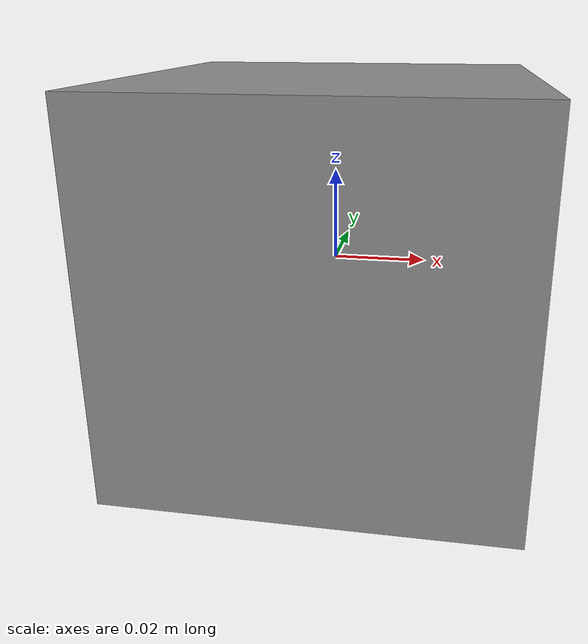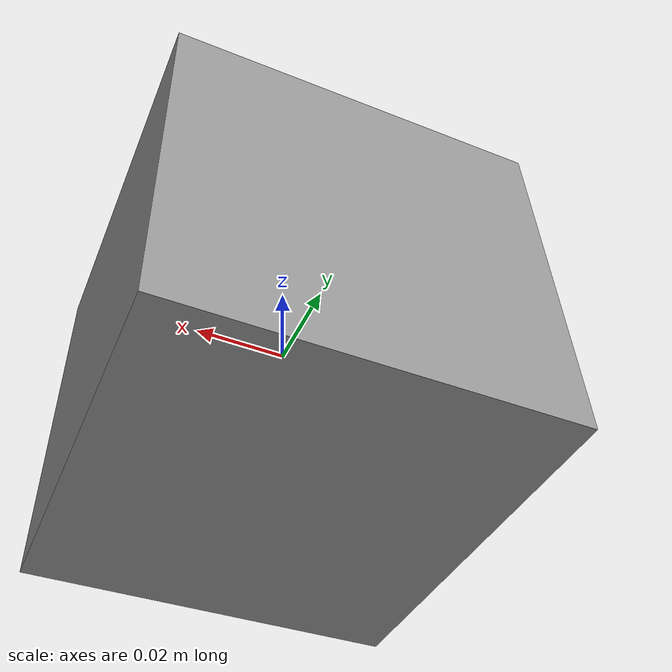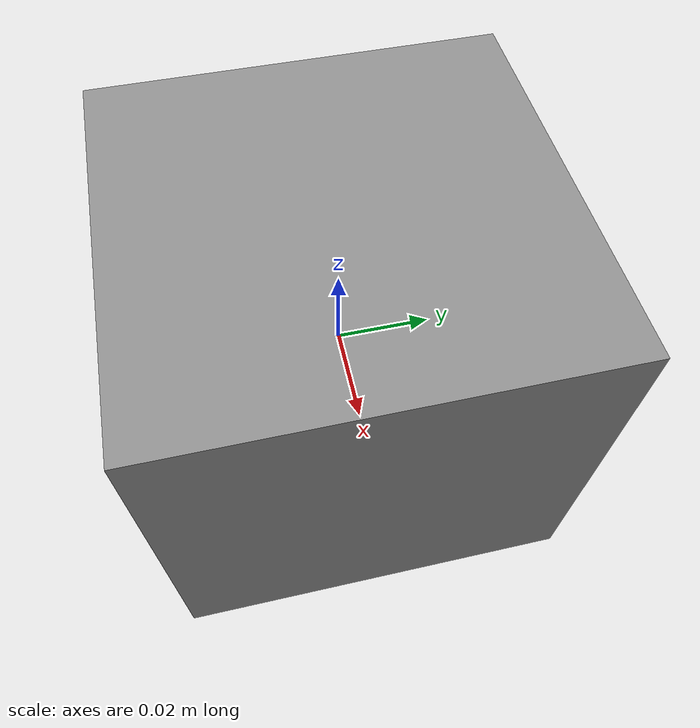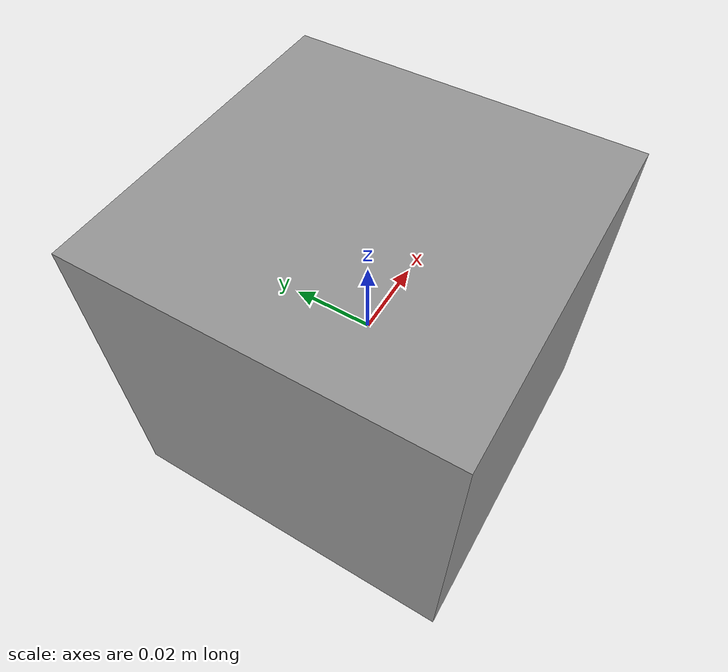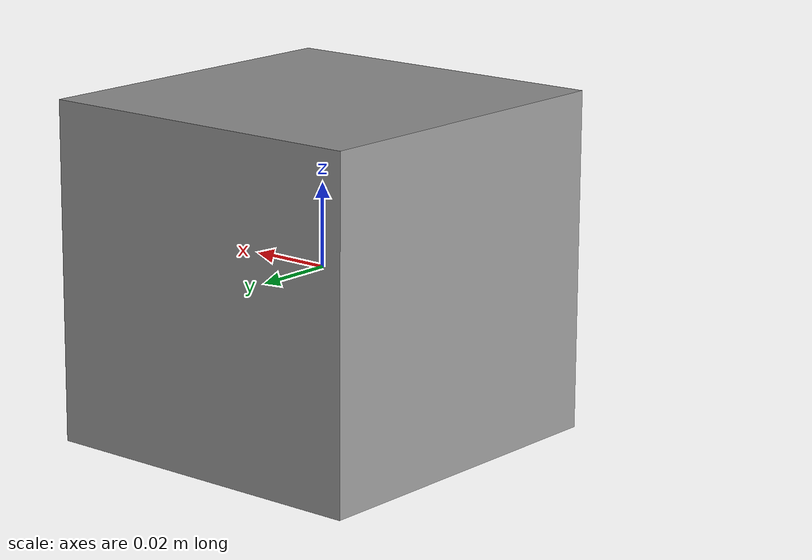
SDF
<?xml version="1.0" ?>
<sdf version="1.4">

  <model name="lidar1">
    <link name="link_0">
      <inertial>
        <mass>0.000572139</mass>
        <inertia>
          <ixx>6.57245e-07</ixx>
          <ixy>0</ixy>
          <ixz>0</ixz>
          <iyy>6.39952e-07</iyy>
          <iyz>0</iyz>
          <izz>6.75843e-07</izz>
        </inertia>
        <pose>0 0 0 0 -0 0</pose>
      </inertial>
      <pose>-0 -0 -0 0 -0 0</pose>
      <visual name="visual">
        <pose>0 0 0 0 -0 0</pose>
        <geometry>
          <box>
            <size>0.083103 0.085258 0.080723</size>
          </box>
        </geometry>
        <material>
          <lighting>1</lighting>
          <script>
            <uri>file://media/materials/scripts/gazebo.material</uri>
            <name>Gazebo/Grey</name>
          </script>
          <shader type="pixel"/>
        </material>
        <transparency>0</transparency>
        <cast_shadows>1</cast_shadows>
      </visual>
      <collision name="collision">
        <laser_retro>0</laser_retro>
        <max_contacts>10</max_contacts>
        <pose>0 0 0 0 -0 0</pose>
        <geometry>
          <box>
            <size>0.083103 0.085258 0.080723</size>
          </box>
        </geometry>
        <surface>
          <!-- surface details omitted for brevity -->
        </surface>
      </collision>
    </link>

    <joint name="lidar_joint" type="fixed">
      <parent>lidar1::link_0</parent>
      <child>lidar1::link</child>
    </joint>

    <link name="link">
      <pose>0 0 0 0 0 0</pose>
      <inertial>
        <pose>0 0 0 0 0 0</pose>
        <mass>0.01</mass>
        <inertia>
          <ixx>2.1733e-6</ixx>
          <ixy>0</ixy>
          <ixz>0</ixz>
          <iyy>2.1733e-6</iyy>
          <iyz>0</iyz>
          <izz>1.8e-7</izz>
        </inertia>
      </inertial>
      <visual name="visual">
        <geometry>
          <cylinder><radius>0.006</radius><length>0.05</length></cylinder>
        </geometry>
        <material>
          <script>
            <name>Gazebo/Black</name>
          </script>
        </material>
      </visual>
      <sensor name="laser" type="ray">
        <pose>0 0 0 0 1.57079633 0</pose>
        <ray>
          <scan>
            <horizontal>
              <samples>1</samples>
              <resolution>1</resolution>
              <min_angle>-0</min_angle>
              <max_angle>0</max_angle>
            </horizontal>
          </scan>
          <range>
            <min>0.06</min> <!-- do not change: use min_distance (below) for realistic behavior (smaller values cause issues) -->

            <max>35</max>   <!-- do not change: use min_distance (below) for realistic behavior (bigger values cause issues) -->

            <resolution>0.01</resolution>
          </range>
          <noise>
            <type>gaussian</type>
            <mean>0.0</mean>
            <stddev>0.02</stddev>
          </noise>
        </ray>
        <plugin name="lidar_node" filename="libgazebo_ros_laser.so">
          <robotNamespace></robotNamespace>
          <topicName>/laser1/scan</topicName>
          <frameName>/lidar1_sensor_link</frameName>
        </plugin>

        <always_on>1</always_on>
        <update_rate>20</update_rate>
        <visualize>true</visualize>
      </sensor>
    </link>
    <static>1</static>
  </model>
</sdf>
